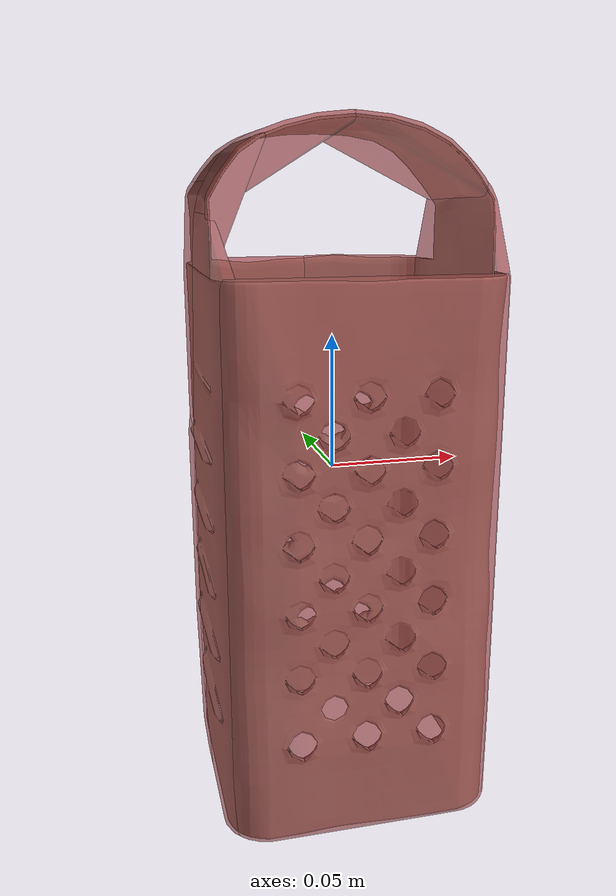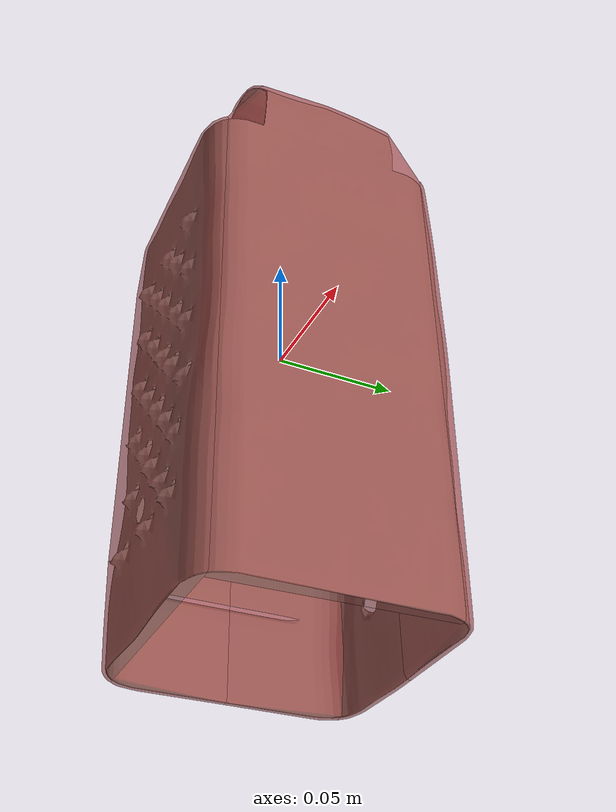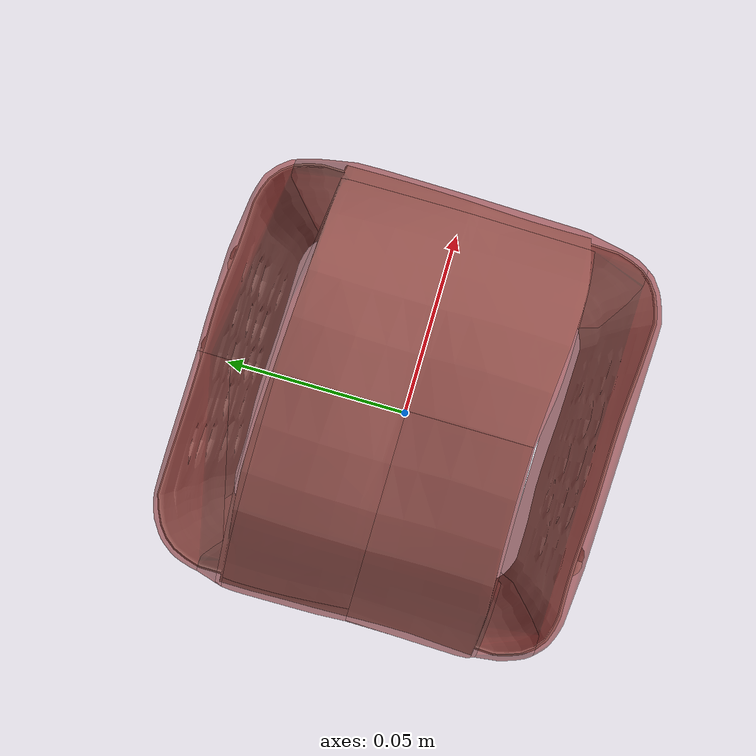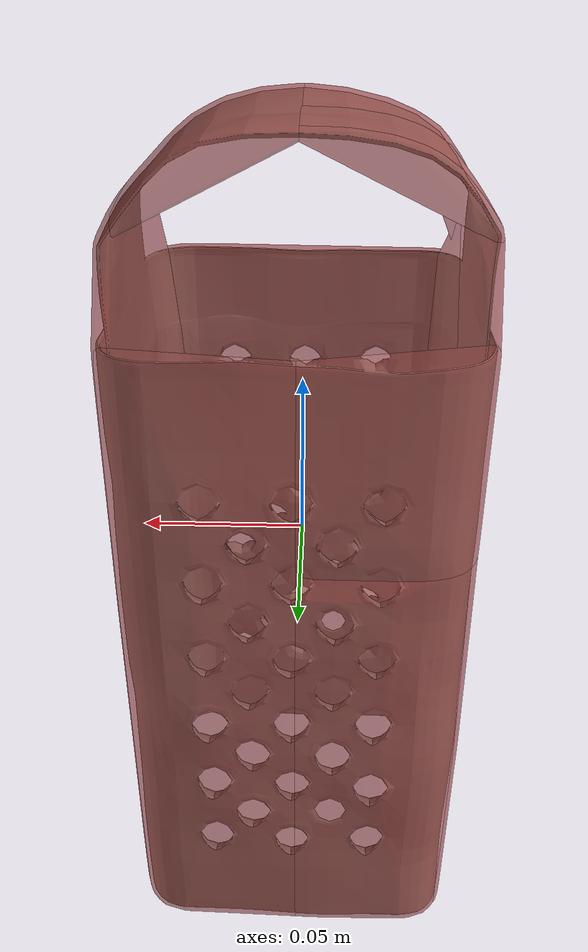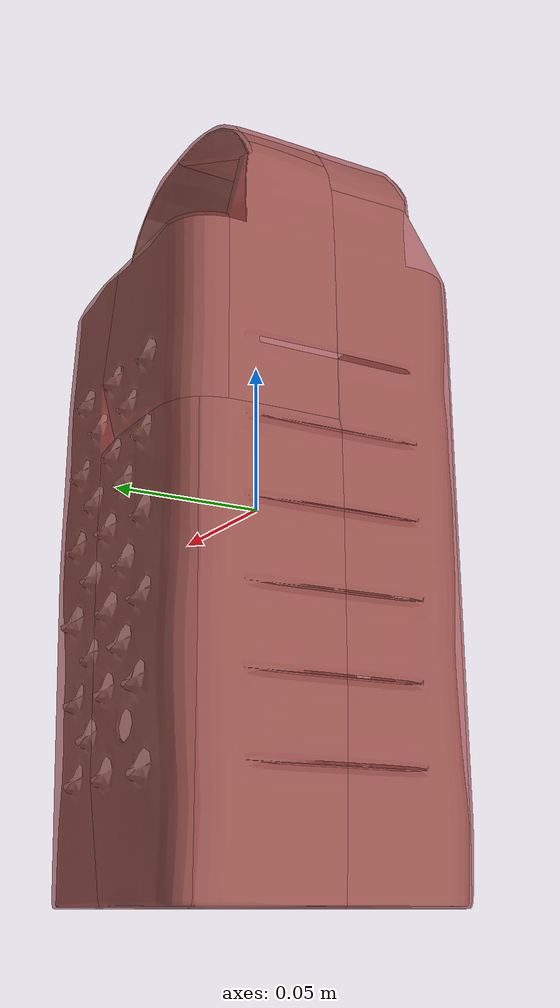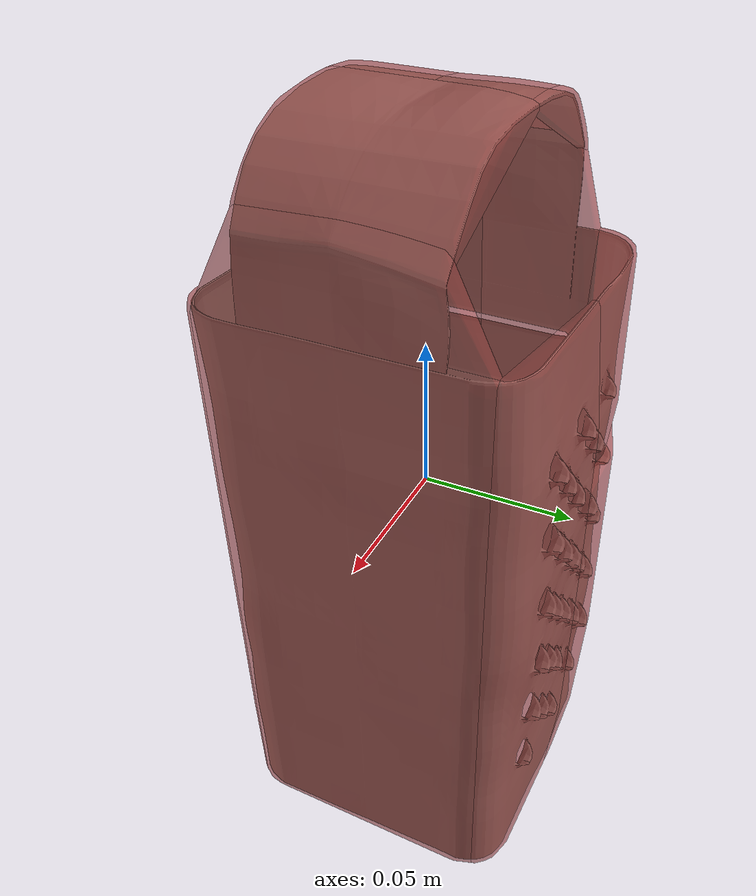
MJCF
<mujoco model="model">
  <option timestep="0.002" gravity="0.0 0.0 -9.81"/>
  <compiler angle="radian"/>
  <asset>
    <mesh file="visual/CheeseGrater002.obj" name="CheeseGrater002_vis"/>
    <texture file="visual/T_BC001.png" name="CheeseGrater002_material" type="2d"/>
    <material name="CheeseGrater002_material" rgba="1 1 1 1.0" texture="CheeseGrater002_material" shininess="0.141421377658844" specular="0.3103448502657381"/>
    <mesh file="collision/collision_mesh_collision_0.obj" name="CheeseGrater002_collision_mesh_0"/>
    <mesh file="collision/collision_mesh_collision_1.obj" name="CheeseGrater002_collision_mesh_1"/>
    <mesh file="collision/collision_mesh_collision_2.obj" name="CheeseGrater002_collision_mesh_2"/>
    <mesh file="collision/collision_mesh_collision_3.obj" name="CheeseGrater002_collision_mesh_3"/>
    <mesh file="collision/collision_mesh_collision_4.obj" name="CheeseGrater002_collision_mesh_4"/>
    <mesh file="collision/collision_mesh_collision_5.obj" name="CheeseGrater002_collision_mesh_5"/>
    <mesh file="collision/collision_mesh_collision_6.obj" name="CheeseGrater002_collision_mesh_6"/>
    <mesh file="collision/collision_mesh_collision_7.obj" name="CheeseGrater002_collision_mesh_7"/>
    <mesh file="collision/collision_mesh_collision_8.obj" name="CheeseGrater002_collision_mesh_8"/>
    <mesh file="collision/collision_mesh_collision_9.obj" name="CheeseGrater002_collision_mesh_9"/>
    <mesh file="collision/collision_mesh_collision_10.obj" name="CheeseGrater002_collision_mesh_10"/>
    <mesh file="collision/collision_mesh_collision_11.obj" name="CheeseGrater002_collision_mesh_11"/>
    <mesh file="collision/collision_mesh_collision_12.obj" name="CheeseGrater002_collision_mesh_12"/>
  </asset>
  <default>
    <default class="visual">
      <geom conaffinity="0" contype="0" group="1" type="mesh"/>
    </default>
    <default class="collision">
      <geom group="0" rgba="0.5 0 0 0.5" density="1.0" solref="0.004 1" solimp="0.998 0.998 0.001"/>
    </default>
    <default class="spawn">
      <geom group="0" rgba="1 1 1 0.5" contype="0" conaffinity="0"/>
      <site group="0" rgba="1 1 1 0.5"/>
    </default>
    <default class="region">
      <geom group="1" conaffinity="0" contype="0" rgba="0 1 0 0" mass="0"/>
    </default>
  </default>
  <worldbody>
    <body>
      <body name="object">
        <geom mesh="CheeseGrater002_vis" type="mesh" solimp="0.998 0.998 0.001" solref="0.001 1" friction="0.95 0.3 0.1" class="visual" material="CheeseGrater002_material"/>
        <geom class="region" name="reg_bbox" type="box" pos="0.00019554500000000183 -3.2555000000000084e-05 0.0002884749999999964" size="0.052713394999999996 0.055667604999999995 0.12545540500000002"/>
        <geom mesh="CheeseGrater002_collision_mesh_0" type="mesh" class="collision"/>
        <geom mesh="CheeseGrater002_collision_mesh_1" type="mesh" class="collision"/>
        <geom mesh="CheeseGrater002_collision_mesh_2" type="mesh" class="collision"/>
        <geom mesh="CheeseGrater002_collision_mesh_3" type="mesh" class="collision"/>
        <geom mesh="CheeseGrater002_collision_mesh_4" type="mesh" class="collision"/>
        <geom mesh="CheeseGrater002_collision_mesh_5" type="mesh" class="collision"/>
        <geom mesh="CheeseGrater002_collision_mesh_6" type="mesh" class="collision"/>
        <geom mesh="CheeseGrater002_collision_mesh_7" type="mesh" class="collision"/>
        <geom mesh="CheeseGrater002_collision_mesh_8" type="mesh" class="collision"/>
        <geom mesh="CheeseGrater002_collision_mesh_9" type="mesh" class="collision"/>
        <geom mesh="CheeseGrater002_collision_mesh_10" type="mesh" class="collision"/>
        <geom mesh="CheeseGrater002_collision_mesh_11" type="mesh" class="collision"/>
        <geom mesh="CheeseGrater002_collision_mesh_12" type="mesh" class="collision"/>
      </body>
    </body>
  </worldbody>
  <actuator/>
</mujoco>
